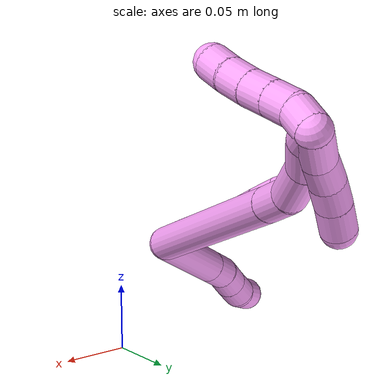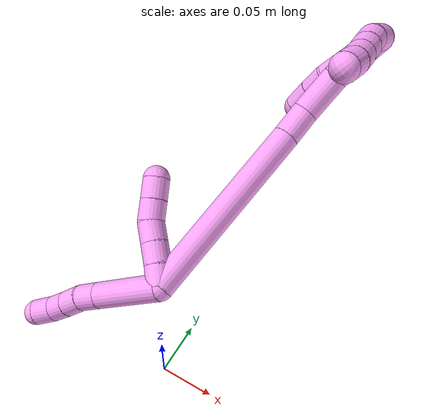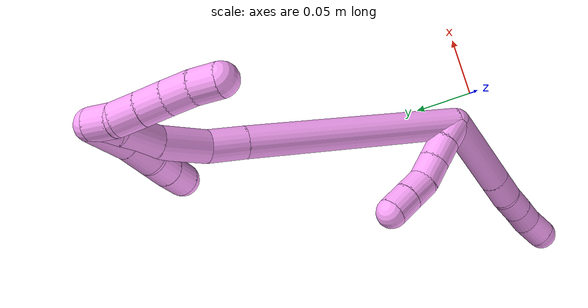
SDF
<sdf version="1.7">
 <world name="default">
  <model name="4">
   <static>0</static>
   <link name="4">
    <collision name="collision-cylinder-e_1_2_8">
     <pose>-0.013005 0.003216 -0.03126 -3.03909 -0.392388 2.63643</pose>
     <geometry><cylinder><radius>0.0125</radius><length>0.06802</length></cylinder></geometry>
     <surface>
      <friction><ode><mu>1.16</mu><mu2>1.16</mu2><slip1>0</slip1><slip2>0</slip2></ode></friction>
      <contact><ode><kp>1e+06</kp><kd>1</kd><max_vel>0</max_vel><min_depth>0.001</min_depth></ode></contact>
     </surface>
    </collision>
    <visual name="visual-cylinder-e_1_2_8">
     <pose>-0.013005 0.003216 -0.03126 -3.03909 -0.392388 2.63643</pose>
     <geometry><cylinder><radius>0.0125</radius><length>0.06802</length></cylinder></geometry>
     <material><ambient>1 0.65098 0.996078 1</ambient></material>
    </visual>
    <collision name="collision-cylinder-e_2_8_9">
     <pose>-0.030126 0.007449 -0.072432 -3.03927 -0.391738 2.63644</pose>
     <geometry><cylinder><radius>0.0125</radius><length>0.021561</length></cylinder></geometry>
     <surface>
      <friction><ode><mu>1.16</mu><mu2>1.16</mu2><slip1>0</slip1><slip2>0</slip2></ode></friction>
      <contact><ode><kp>1e+06</kp><kd>1</kd><max_vel>0</max_vel><min_depth>0.001</min_depth></ode></contact>
     </surface>
    </collision>
    <visual name="visual-cylinder-e_2_8_9">
     <pose>-0.030126 0.007449 -0.072432 -3.03927 -0.391738 2.63644</pose>
     <geometry><cylinder><radius>0.0125</radius><length>0.021561</length></cylinder></geometry>
     <material><ambient>1 0.65098 0.996078 1</ambient></material>
    </visual>
    <collision name="collision-cylinder-e_3_9_10">
     <pose>-0.036452 0.008195 -0.09215 3.11388 -0.22151 -2.89367</pose>
     <geometry><cylinder><radius>0.0125</radius><length>0.020111</length></cylinder></geometry>
     <surface>
      <friction><ode><mu>1.16</mu><mu2>1.16</mu2><slip1>0</slip1><slip2>0</slip2></ode></friction>
      <contact><ode><kp>1e+06</kp><kd>1</kd><max_vel>0</max_vel><min_depth>0.001</min_depth></ode></contact>
     </surface>
    </collision>
    <visual name="visual-cylinder-e_3_9_10">
     <pose>-0.036452 0.008195 -0.09215 3.11388 -0.22151 -2.89367</pose>
     <geometry><cylinder><radius>0.0125</radius><length>0.020111</length></cylinder></geometry>
     <material><ambient>1 0.65098 0.996078 1</ambient></material>
    </visual>
    <collision name="collision-cylinder-e_4_10_11">
     <pose>-0.040963 0.008021 -0.111756 -3.1316 -0.230685 3.05539</pose>
     <geometry><cylinder><radius>0.0125</radius><length>0.020134</length></cylinder></geometry>
     <surface>
      <friction><ode><mu>1.16</mu><mu2>1.16</mu2><slip1>0</slip1><slip2>0</slip2></ode></friction>
      <contact><ode><kp>1e+06</kp><kd>1</kd><max_vel>0</max_vel><min_depth>0.001</min_depth></ode></contact>
     </surface>
    </collision>
    <visual name="visual-cylinder-e_4_10_11">
     <pose>-0.040963 0.008021 -0.111756 -3.1316 -0.230685 3.05539</pose>
     <geometry><cylinder><radius>0.0125</radius><length>0.020134</length></cylinder></geometry>
     <material><ambient>1 0.65098 0.996078 1</ambient></material>
    </visual>
    <collision name="collision-cylinder-e_5_11_6">
     <pose>-0.048455 0.007258 -0.130161 3.04193 -0.540581 -2.78542</pose>
     <geometry><cylinder><radius>0.0125</radius><length>0.020174</length></cylinder></geometry>
     <surface>
      <friction><ode><mu>1.16</mu><mu2>1.16</mu2><slip1>0</slip1><slip2>0</slip2></ode></friction>
      <contact><ode><kp>1e+06</kp><kd>1</kd><max_vel>0</max_vel><min_depth>0.001</min_depth></ode></contact>
     </surface>
    </collision>
    <visual name="visual-cylinder-e_5_11_6">
     <pose>-0.048455 0.007258 -0.130161 3.04193 -0.540581 -2.78542</pose>
     <geometry><cylinder><radius>0.0125</radius><length>0.020174</length></cylinder></geometry>
     <material><ambient>1 0.65098 0.996078 1</ambient></material>
    </visual>
    <collision name="collision-cylinder-e_1_2_12">
     <pose>-0.00378 0.009015 0.002109 -1.34094 -0.387611 0.308812</pose>
     <geometry><cylinder><radius>0.0125</radius><length>0.02</length></cylinder></geometry>
     <surface>
      <friction><ode><mu>1.16</mu><mu2>1.16</mu2><slip1>0</slip1><slip2>0</slip2></ode></friction>
      <contact><ode><kp>1e+06</kp><kd>1</kd><max_vel>0</max_vel><min_depth>0.001</min_depth></ode></contact>
     </surface>
    </collision>
    <visual name="visual-cylinder-e_1_2_12">
     <pose>-0.00378 0.009015 0.002109 -1.34094 -0.387611 0.308812</pose>
     <geometry><cylinder><radius>0.0125</radius><length>0.02</length></cylinder></geometry>
     <material><ambient>1 0.65098 0.996078 1</ambient></material>
    </visual>
    <collision name="collision-cylinder-e_2_12_13">
     <pose>-0.011722 0.027018 0.00559 -1.41938 -0.429345 0.370287</pose>
     <geometry><cylinder><radius>0.0125</radius><length>0.02</length></cylinder></geometry>
     <surface>
      <friction><ode><mu>1.16</mu><mu2>1.16</mu2><slip1>0</slip1><slip2>0</slip2></ode></friction>
      <contact><ode><kp>1e+06</kp><kd>1</kd><max_vel>0</max_vel><min_depth>0.001</min_depth></ode></contact>
     </surface>
    </collision>
    <visual name="visual-cylinder-e_2_12_13">
     <pose>-0.011722 0.027018 0.00559 -1.41938 -0.429345 0.370287</pose>
     <geometry><cylinder><radius>0.0125</radius><length>0.02</length></cylinder></geometry>
     <material><ambient>1 0.65098 0.996078 1</ambient></material>
    </visual>
    <collision name="collision-cylinder-e_3_13_14">
     <pose>-0.02003 0.045001 0.008342 -1.41847 -0.427374 0.368241</pose>
     <geometry><cylinder><radius>0.0125</radius><length>0.02</length></cylinder></geometry>
     <surface>
      <friction><ode><mu>1.16</mu><mu2>1.16</mu2><slip1>0</slip1><slip2>0</slip2></ode></friction>
      <contact><ode><kp>1e+06</kp><kd>1</kd><max_vel>0</max_vel><min_depth>0.001</min_depth></ode></contact>
     </surface>
    </collision>
    <visual name="visual-cylinder-e_3_13_14">
     <pose>-0.02003 0.045001 0.008342 -1.41847 -0.427374 0.368241</pose>
     <geometry><cylinder><radius>0.0125</radius><length>0.02</length></cylinder></geometry>
     <material><ambient>1 0.65098 0.996078 1</ambient></material>
    </visual>
    <collision name="collision-cylinder-e_4_14_15">
     <pose>-0.02676 0.062673 0.01397 -1.1156 -0.261459 0.163691</pose>
     <geometry><cylinder><radius>0.0125</radius><length>0.02</length></cylinder></geometry>
     <surface>
      <friction><ode><mu>1.16</mu><mu2>1.16</mu2><slip1>0</slip1><slip2>0</slip2></ode></friction>
      <contact><ode><kp>1e+06</kp><kd>1</kd><max_vel>0</max_vel><min_depth>0.001</min_depth></ode></contact>
     </surface>
    </collision>
    <visual name="visual-cylinder-e_4_14_15">
     <pose>-0.02676 0.062673 0.01397 -1.1156 -0.261459 0.163691</pose>
     <geometry><cylinder><radius>0.0125</radius><length>0.02</length></cylinder></geometry>
     <material><ambient>1 0.65098 0.996078 1</ambient></material>
    </visual>
    <collision name="collision-cylinder-e_5_15_5">
     <pose>-0.031905 0.080138 0.022242 -1.14134 -0.258936 0.166762</pose>
     <geometry><cylinder><radius>0.0125</radius><length>0.02</length></cylinder></geometry>
     <surface>
      <friction><ode><mu>1.16</mu><mu2>1.16</mu2><slip1>0</slip1><slip2>0</slip2></ode></friction>
      <contact><ode><kp>1e+06</kp><kd>1</kd><max_vel>0</max_vel><min_depth>0.001</min_depth></ode></contact>
     </surface>
    </collision>
    <visual name="visual-cylinder-e_5_15_5">
     <pose>-0.031905 0.080138 0.022242 -1.14134 -0.258936 0.166762</pose>
     <geometry><cylinder><radius>0.0125</radius><length>0.02</length></cylinder></geometry>
     <material><ambient>1 0.65098 0.996078 1</ambient></material>
    </visual>
    <collision name="collision-cylinder-e_1_2_16">
     <pose>0.021549 0.064551 0.057631 -0.841974 0.244056 -0.109713</pose>
     <geometry><cylinder><radius>0.0125</radius><length>0.178354</length></cylinder></geometry>
     <surface>
      <friction><ode><mu>1.16</mu><mu2>1.16</mu2><slip1>0</slip1><slip2>0</slip2></ode></friction>
      <contact><ode><kp>1e+06</kp><kd>1</kd><max_vel>0</max_vel><min_depth>0.001</min_depth></ode></contact>
     </surface>
    </collision>
    <visual name="visual-cylinder-e_1_2_16">
     <pose>0.021549 0.064551 0.057631 -0.841974 0.244056 -0.109713</pose>
     <geometry><cylinder><radius>0.0125</radius><length>0.178354</length></cylinder></geometry>
     <material><ambient>1 0.65098 0.996078 1</ambient></material>
    </visual>
    <collision name="collision-cylinder-e_2_16_17">
     <pose>0.046265 0.139945 0.124981 -0.840024 0.214185 -0.095946</pose>
     <geometry><cylinder><radius>0.0125</radius><length>0.029802</length></cylinder></geometry>
     <surface>
      <friction><ode><mu>1.16</mu><mu2>1.16</mu2><slip1>0</slip1><slip2>0</slip2></ode></friction>
      <contact><ode><kp>1e+06</kp><kd>1</kd><max_vel>0</max_vel><min_depth>0.001</min_depth></ode></contact>
     </surface>
    </collision>
    <visual name="visual-cylinder-e_2_16_17">
     <pose>0.046265 0.139945 0.124981 -0.840024 0.214185 -0.095946</pose>
     <geometry><cylinder><radius>0.0125</radius><length>0.029802</length></cylinder></geometry>
     <material><ambient>1 0.65098 0.996078 1</ambient></material>
    </visual>
    <collision name="collision-cylinder-e_3_17_18">
     <pose>0.051427 0.161375 0.152039 -0.548162 0.097879 -0.02754</pose>
     <geometry><cylinder><radius>0.0125</radius><length>0.04083</length></cylinder></geometry>
     <surface>
      <friction><ode><mu>1.16</mu><mu2>1.16</mu2><slip1>0</slip1><slip2>0</slip2></ode></friction>
      <contact><ode><kp>1e+06</kp><kd>1</kd><max_vel>0</max_vel><min_depth>0.001</min_depth></ode></contact>
     </surface>
    </collision>
    <visual name="visual-cylinder-e_3_17_18">
     <pose>0.051427 0.161375 0.152039 -0.548162 0.097879 -0.02754</pose>
     <geometry><cylinder><radius>0.0125</radius><length>0.04083</length></cylinder></geometry>
     <material><ambient>1 0.65098 0.996078 1</ambient></material>
    </visual>
    <collision name="collision-cylinder-e_4_18_19">
     <pose>0.054874 0.176591 0.184 -0.306574 0.094425 -0.014599</pose>
     <geometry><cylinder><radius>0.0125</radius><length>0.030809</length></cylinder></geometry>
     <surface>
      <friction><ode><mu>1.16</mu><mu2>1.16</mu2><slip1>0</slip1><slip2>0</slip2></ode></friction>
      <contact><ode><kp>1e+06</kp><kd>1</kd><max_vel>0</max_vel><min_depth>0.001</min_depth></ode></contact>
     </surface>
    </collision>
    <visual name="visual-cylinder-e_4_18_19">
     <pose>0.054874 0.176591 0.184 -0.306574 0.094425 -0.014599</pose>
     <geometry><cylinder><radius>0.0125</radius><length>0.030809</length></cylinder></geometry>
     <material><ambient>1 0.65098 0.996078 1</ambient></material>
    </visual>
    <collision name="collision-cylinder-e_5_19_1">
     <pose>0.059342 0.186324 0.206801 -0.557936 0.303061 -0.087423</pose>
     <geometry><cylinder><radius>0.0125</radius><length>0.020205</length></cylinder></geometry>
     <surface>
      <friction><ode><mu>1.16</mu><mu2>1.16</mu2><slip1>0</slip1><slip2>0</slip2></ode></friction>
      <contact><ode><kp>1e+06</kp><kd>1</kd><max_vel>0</max_vel><min_depth>0.001</min_depth></ode></contact>
     </surface>
    </collision>
    <visual name="visual-cylinder-e_5_19_1">
     <pose>0.059342 0.186324 0.206801 -0.557936 0.303061 -0.087423</pose>
     <geometry><cylinder><radius>0.0125</radius><length>0.020205</length></cylinder></geometry>
     <material><ambient>1 0.65098 0.996078 1</ambient></material>
    </visual>
    <collision name="collision-cylinder-e_1_1_20">
     <pose>0.05987 0.188239 0.199456 2.93891 -0.155624 -1.30824</pose>
     <geometry><cylinder><radius>0.0125</radius><length>0.032086</length></cylinder></geometry>
     <surface>
      <friction><ode><mu>1.16</mu><mu2>1.16</mu2><slip1>0</slip1><slip2>0</slip2></ode></friction>
      <contact><ode><kp>1e+06</kp><kd>1</kd><max_vel>0</max_vel><min_depth>0.001</min_depth></ode></contact>
     </surface>
    </collision>
    <visual name="visual-cylinder-e_1_1_20">
     <pose>0.05987 0.188239 0.199456 2.93891 -0.155624 -1.30824</pose>
     <geometry><cylinder><radius>0.0125</radius><length>0.032086</length></cylinder></geometry>
     <material><ambient>1 0.65098 0.996078 1</ambient></material>
    </visual>
    <collision name="collision-cylinder-e_2_20_21">
     <pose>0.056178 0.184381 0.171527 3.08789 -0.096785 -2.12897</pose>
     <geometry><cylinder><radius>0.0125</radius><length>0.024961</length></cylinder></geometry>
     <surface>
      <friction><ode><mu>1.16</mu><mu2>1.16</mu2><slip1>0</slip1><slip2>0</slip2></ode></friction>
      <contact><ode><kp>1e+06</kp><kd>1</kd><max_vel>0</max_vel><min_depth>0.001</min_depth></ode></contact>
     </surface>
    </collision>
    <visual name="visual-cylinder-e_2_20_21">
     <pose>0.056178 0.184381 0.171527 3.08789 -0.096785 -2.12897</pose>
     <geometry><cylinder><radius>0.0125</radius><length>0.024961</length></cylinder></geometry>
     <material><ambient>1 0.65098 0.996078 1</ambient></material>
    </visual>
    <collision name="collision-cylinder-e_3_21_22">
     <pose>0.05598 0.183592 0.148987 3.1295 0.099107 2.89887</pose>
     <geometry><cylinder><radius>0.0125</radius><length>0.020374</length></cylinder></geometry>
     <surface>
      <friction><ode><mu>1.16</mu><mu2>1.16</mu2><slip1>0</slip1><slip2>0</slip2></ode></friction>
      <contact><ode><kp>1e+06</kp><kd>1</kd><max_vel>0</max_vel><min_depth>0.001</min_depth></ode></contact>
     </surface>
    </collision>
    <visual name="visual-cylinder-e_3_21_22">
     <pose>0.05598 0.183592 0.148987 3.1295 0.099107 2.89887</pose>
     <geometry><cylinder><radius>0.0125</radius><length>0.020374</length></cylinder></geometry>
     <material><ambient>1 0.65098 0.996078 1</ambient></material>
    </visual>
    <collision name="collision-cylinder-e_4_22_4">
     <pose>0.058513 0.182848 0.127682 3.08603 0.135498 2.36417</pose>
     <geometry><cylinder><radius>0.0125</radius><length>0.022578</length></cylinder></geometry>
     <surface>
      <friction><ode><mu>1.16</mu><mu2>1.16</mu2><slip1>0</slip1><slip2>0</slip2></ode></friction>
      <contact><ode><kp>1e+06</kp><kd>1</kd><max_vel>0</max_vel><min_depth>0.001</min_depth></ode></contact>
     </surface>
    </collision>
    <visual name="visual-cylinder-e_4_22_4">
     <pose>0.058513 0.182848 0.127682 3.08603 0.135498 2.36417</pose>
     <geometry><cylinder><radius>0.0125</radius><length>0.022578</length></cylinder></geometry>
     <material><ambient>1 0.65098 0.996078 1</ambient></material>
    </visual>
    <collision name="collision-cylinder-e_1_1_23">
     <pose>0.055332 0.184323 0.215355 1.51825 -0.778973 -0.742731</pose>
     <geometry><cylinder><radius>0.0125</radius><length>0.02</length></cylinder></geometry>
     <surface>
      <friction><ode><mu>1.16</mu><mu2>1.16</mu2><slip1>0</slip1><slip2>0</slip2></ode></friction>
      <contact><ode><kp>1e+06</kp><kd>1</kd><max_vel>0</max_vel><min_depth>0.001</min_depth></ode></contact>
     </surface>
    </collision>
    <visual name="visual-cylinder-e_1_1_23">
     <pose>0.055332 0.184323 0.215355 1.51825 -0.778973 -0.742731</pose>
     <geometry><cylinder><radius>0.0125</radius><length>0.02</length></cylinder></geometry>
     <material><ambient>1 0.65098 0.996078 1</ambient></material>
    </visual>
    <collision name="collision-cylinder-e_2_23_24">
     <pose>0.043701 0.168361 0.215111 1.64047 -0.478578 -0.511696</pose>
     <geometry><cylinder><radius>0.0125</radius><length>0.02</length></cylinder></geometry>
     <surface>
      <friction><ode><mu>1.16</mu><mu2>1.16</mu2><slip1>0</slip1><slip2>0</slip2></ode></friction>
      <contact><ode><kp>1e+06</kp><kd>1</kd><max_vel>0</max_vel><min_depth>0.001</min_depth></ode></contact>
     </surface>
    </collision>
    <visual name="visual-cylinder-e_2_23_24">
     <pose>0.043701 0.168361 0.215111 1.64047 -0.478578 -0.511696</pose>
     <geometry><cylinder><radius>0.0125</radius><length>0.02</length></cylinder></geometry>
     <material><ambient>1 0.65098 0.996078 1</ambient></material>
    </visual>
    <collision name="collision-cylinder-e_3_24_25">
     <pose>0.034616 0.150588 0.213855 1.64217 -0.464501 -0.497542</pose>
     <geometry><cylinder><radius>0.0125</radius><length>0.02</length></cylinder></geometry>
     <surface>
      <friction><ode><mu>1.16</mu><mu2>1.16</mu2><slip1>0</slip1><slip2>0</slip2></ode></friction>
      <contact><ode><kp>1e+06</kp><kd>1</kd><max_vel>0</max_vel><min_depth>0.001</min_depth></ode></contact>
     </surface>
    </collision>
    <visual name="visual-cylinder-e_3_24_25">
     <pose>0.034616 0.150588 0.213855 1.64217 -0.464501 -0.497542</pose>
     <geometry><cylinder><radius>0.0125</radius><length>0.02</length></cylinder></geometry>
     <material><ambient>1 0.65098 0.996078 1</ambient></material>
    </visual>
    <collision name="collision-cylinder-e_4_25_26">
     <pose>0.02516 0.132999 0.213013 1.59437 -0.520883 -0.532738</pose>
     <geometry><cylinder><radius>0.0125</radius><length>0.02</length></cylinder></geometry>
     <surface>
      <friction><ode><mu>1.16</mu><mu2>1.16</mu2><slip1>0</slip1><slip2>0</slip2></ode></friction>
      <contact><ode><kp>1e+06</kp><kd>1</kd><max_vel>0</max_vel><min_depth>0.001</min_depth></ode></contact>
     </surface>
    </collision>
    <visual name="visual-cylinder-e_4_25_26">
     <pose>0.02516 0.132999 0.213013 1.59437 -0.520883 -0.532738</pose>
     <geometry><cylinder><radius>0.0125</radius><length>0.02</length></cylinder></geometry>
     <material><ambient>1 0.65098 0.996078 1</ambient></material>
    </visual>
    <collision name="collision-cylinder-e_5_26_3">
     <pose>0.014342 0.11624 0.212124 1.65524 -0.623752 -0.674845</pose>
     <geometry><cylinder><radius>0.0125</radius><length>0.02</length></cylinder></geometry>
     <surface>
      <friction><ode><mu>1.16</mu><mu2>1.16</mu2><slip1>0</slip1><slip2>0</slip2></ode></friction>
      <contact><ode><kp>1e+06</kp><kd>1</kd><max_vel>0</max_vel><min_depth>0.001</min_depth></ode></contact>
     </surface>
    </collision>
    <visual name="visual-cylinder-e_5_26_3">
     <pose>0.014342 0.11624 0.212124 1.65524 -0.623752 -0.674845</pose>
     <geometry><cylinder><radius>0.0125</radius><length>0.02</length></cylinder></geometry>
     <material><ambient>1 0.65098 0.996078 1</ambient></material>
    </visual>
    <collision name="collision-sphere-3">
     <pose>0.008502 0.108152 0.211439 0 -0 0</pose>
     <geometry><sphere><radius>0.0125</radius></sphere></geometry>
     <surface>
      <friction><ode><mu>1.16</mu><mu2>1.16</mu2><slip1>0</slip1><slip2>0</slip2></ode></friction>
      <contact><ode><kp>1e+06</kp><kd>1</kd><max_vel>0</max_vel><min_depth>0.001</min_depth></ode></contact>
     </surface>
    </collision>
    <visual name="visual-sphere-3">
     <pose>0.008502 0.108152 0.211439 0 -0 0</pose>
     <geometry><sphere><radius>0.0125</radius></sphere></geometry>
     <material><ambient>1 0.65098 0.996078 1</ambient></material>
    </visual>
    <collision name="collision-sphere-26">
     <pose>0.020183 0.124328 0.212809 0 -0 0</pose>
     <geometry><sphere><radius>0.0125</radius></sphere></geometry>
     <surface>
      <friction><ode><mu>1.16</mu><mu2>1.16</mu2><slip1>0</slip1><slip2>0</slip2></ode></friction>
      <contact><ode><kp>1e+06</kp><kd>1</kd><max_vel>0</max_vel><min_depth>0.001</min_depth></ode></contact>
     </surface>
    </collision>
    <visual name="visual-sphere-26">
     <pose>0.020183 0.124328 0.212809 0 -0 0</pose>
     <geometry><sphere><radius>0.0125</radius></sphere></geometry>
     <material><ambient>1 0.65098 0.996078 1</ambient></material>
    </visual>
    <collision name="collision-sphere-25">
     <pose>0.030136 0.141671 0.213218 0 -0 0</pose>
     <geometry><sphere><radius>0.0125</radius></sphere></geometry>
     <surface>
      <friction><ode><mu>1.16</mu><mu2>1.16</mu2><slip1>0</slip1><slip2>0</slip2></ode></friction>
      <contact><ode><kp>1e+06</kp><kd>1</kd><max_vel>0</max_vel><min_depth>0.001</min_depth></ode></contact>
     </surface>
    </collision>
    <visual name="visual-sphere-25">
     <pose>0.030136 0.141671 0.213218 0 -0 0</pose>
     <geometry><sphere><radius>0.0125</radius></sphere></geometry>
     <material><ambient>1 0.65098 0.996078 1</ambient></material>
    </visual>
    <collision name="collision-sphere-24">
     <pose>0.039096 0.159506 0.214493 0 -0 0</pose>
     <geometry><sphere><radius>0.0125</radius></sphere></geometry>
     <surface>
      <friction><ode><mu>1.16</mu><mu2>1.16</mu2><slip1>0</slip1><slip2>0</slip2></ode></friction>
      <contact><ode><kp>1e+06</kp><kd>1</kd><max_vel>0</max_vel><min_depth>0.001</min_depth></ode></contact>
     </surface>
    </collision>
    <visual name="visual-sphere-24">
     <pose>0.039096 0.159506 0.214493 0 -0 0</pose>
     <geometry><sphere><radius>0.0125</radius></sphere></geometry>
     <material><ambient>1 0.65098 0.996078 1</ambient></material>
    </visual>
    <collision name="collision-sphere-23">
     <pose>0.048306 0.177216 0.215729 0 -0 0</pose>
     <geometry><sphere><radius>0.0125</radius></sphere></geometry>
     <surface>
      <friction><ode><mu>1.16</mu><mu2>1.16</mu2><slip1>0</slip1><slip2>0</slip2></ode></friction>
      <contact><ode><kp>1e+06</kp><kd>1</kd><max_vel>0</max_vel><min_depth>0.001</min_depth></ode></contact>
     </surface>
    </collision>
    <visual name="visual-sphere-23">
     <pose>0.048306 0.177216 0.215729 0 -0 0</pose>
     <geometry><sphere><radius>0.0125</radius></sphere></geometry>
     <material><ambient>1 0.65098 0.996078 1</ambient></material>
    </visual>
    <collision name="collision-sphere-4">
     <pose>0.060038 0.182227 0.116513 0 -0 0</pose>
     <geometry><sphere><radius>0.0125</radius></sphere></geometry>
     <surface>
      <friction><ode><mu>1.16</mu><mu2>1.16</mu2><slip1>0</slip1><slip2>0</slip2></ode></friction>
      <contact><ode><kp>1e+06</kp><kd>1</kd><max_vel>0</max_vel><min_depth>0.001</min_depth></ode></contact>
     </surface>
    </collision>
    <visual name="visual-sphere-4">
     <pose>0.060038 0.182227 0.116513 0 -0 0</pose>
     <geometry><sphere><radius>0.0125</radius></sphere></geometry>
     <material><ambient>1 0.65098 0.996078 1</ambient></material>
    </visual>
    <collision name="collision-sphere-22">
     <pose>0.056988 0.183469 0.13885 0 -0 0</pose>
     <geometry><sphere><radius>0.0125</radius></sphere></geometry>
     <surface>
      <friction><ode><mu>1.16</mu><mu2>1.16</mu2><slip1>0</slip1><slip2>0</slip2></ode></friction>
      <contact><ode><kp>1e+06</kp><kd>1</kd><max_vel>0</max_vel><min_depth>0.001</min_depth></ode></contact>
     </surface>
    </collision>
    <visual name="visual-sphere-22">
     <pose>0.056988 0.183469 0.13885 0 -0 0</pose>
     <geometry><sphere><radius>0.0125</radius></sphere></geometry>
     <material><ambient>1 0.65098 0.996078 1</ambient></material>
    </visual>
    <collision name="collision-sphere-21">
     <pose>0.054972 0.183715 0.159123 0 -0 0</pose>
     <geometry><sphere><radius>0.0125</radius></sphere></geometry>
     <surface>
      <friction><ode><mu>1.16</mu><mu2>1.16</mu2><slip1>0</slip1><slip2>0</slip2></ode></friction>
      <contact><ode><kp>1e+06</kp><kd>1</kd><max_vel>0</max_vel><min_depth>0.001</min_depth></ode></contact>
     </surface>
    </collision>
    <visual name="visual-sphere-21">
     <pose>0.054972 0.183715 0.159123 0 -0 0</pose>
     <geometry><sphere><radius>0.0125</radius></sphere></geometry>
     <material><ambient>1 0.65098 0.996078 1</ambient></material>
    </visual>
    <collision name="collision-sphere-20">
     <pose>0.057384 0.185048 0.183932 0 -0 0</pose>
     <geometry><sphere><radius>0.0125</radius></sphere></geometry>
     <surface>
      <friction><ode><mu>1.16</mu><mu2>1.16</mu2><slip1>0</slip1><slip2>0</slip2></ode></friction>
      <contact><ode><kp>1e+06</kp><kd>1</kd><max_vel>0</max_vel><min_depth>0.001</min_depth></ode></contact>
     </surface>
    </collision>
    <visual name="visual-sphere-20">
     <pose>0.057384 0.185048 0.183932 0 -0 0</pose>
     <geometry><sphere><radius>0.0125</radius></sphere></geometry>
     <material><ambient>1 0.65098 0.996078 1</ambient></material>
    </visual>
    <collision name="collision-sphere-6">
     <pose>-0.053647 0.006398 -0.138767 0 -0 0</pose>
     <geometry><sphere><radius>0.0125</radius></sphere></geometry>
     <surface>
      <friction><ode><mu>1.16</mu><mu2>1.16</mu2><slip1>0</slip1><slip2>0</slip2></ode></friction>
      <contact><ode><kp>1e+06</kp><kd>1</kd><max_vel>0</max_vel><min_depth>0.001</min_depth></ode></contact>
     </surface>
    </collision>
    <visual name="visual-sphere-6">
     <pose>-0.053647 0.006398 -0.138767 0 -0 0</pose>
     <geometry><sphere><radius>0.0125</radius></sphere></geometry>
     <material><ambient>1 0.65098 0.996078 1</ambient></material>
    </visual>
    <collision name="collision-sphere-11">
     <pose>-0.043264 0.008119 -0.121555 0 -0 0</pose>
     <geometry><sphere><radius>0.0125</radius></sphere></geometry>
     <surface>
      <friction><ode><mu>1.16</mu><mu2>1.16</mu2><slip1>0</slip1><slip2>0</slip2></ode></friction>
      <contact><ode><kp>1e+06</kp><kd>1</kd><max_vel>0</max_vel><min_depth>0.001</min_depth></ode></contact>
     </surface>
    </collision>
    <visual name="visual-sphere-11">
     <pose>-0.043264 0.008119 -0.121555 0 -0 0</pose>
     <geometry><sphere><radius>0.0125</radius></sphere></geometry>
     <material><ambient>1 0.65098 0.996078 1</ambient></material>
    </visual>
    <collision name="collision-sphere-10">
     <pose>-0.038661 0.007923 -0.101956 0 -0 0</pose>
     <geometry><sphere><radius>0.0125</radius></sphere></geometry>
     <surface>
      <friction><ode><mu>1.16</mu><mu2>1.16</mu2><slip1>0</slip1><slip2>0</slip2></ode></friction>
      <contact><ode><kp>1e+06</kp><kd>1</kd><max_vel>0</max_vel><min_depth>0.001</min_depth></ode></contact>
     </surface>
    </collision>
    <visual name="visual-sphere-10">
     <pose>-0.038661 0.007923 -0.101956 0 -0 0</pose>
     <geometry><sphere><radius>0.0125</radius></sphere></geometry>
     <material><ambient>1 0.65098 0.996078 1</ambient></material>
    </visual>
    <collision name="collision-sphere-9">
     <pose>-0.034242 0.008467 -0.082343 0 -0 0</pose>
     <geometry><sphere><radius>0.0125</radius></sphere></geometry>
     <surface>
      <friction><ode><mu>1.16</mu><mu2>1.16</mu2><slip1>0</slip1><slip2>0</slip2></ode></friction>
      <contact><ode><kp>1e+06</kp><kd>1</kd><max_vel>0</max_vel><min_depth>0.001</min_depth></ode></contact>
     </surface>
    </collision>
    <visual name="visual-sphere-9">
     <pose>-0.034242 0.008467 -0.082343 0 -0 0</pose>
     <geometry><sphere><radius>0.0125</radius></sphere></geometry>
     <material><ambient>1 0.65098 0.996078 1</ambient></material>
    </visual>
    <collision name="collision-sphere-2">
     <geometry><sphere><radius>0.0125</radius></sphere></geometry>
     <surface>
      <friction><ode><mu>1.16</mu><mu2>1.16</mu2><slip1>0</slip1><slip2>0</slip2></ode></friction>
      <contact><ode><kp>1e+06</kp><kd>1</kd><max_vel>0</max_vel><min_depth>0.001</min_depth></ode></contact>
     </surface>
    </collision>
    <visual name="visual-sphere-2">
     <geometry><sphere><radius>0.0125</radius></sphere></geometry>
     <material><ambient>1 0.65098 0.996078 1</ambient></material>
    </visual>
    <collision name="collision-sphere-19">
     <pose>0.056327 0.181219 0.198621 0 -0 0</pose>
     <geometry><sphere><radius>0.0125</radius></sphere></geometry>
     <surface>
      <friction><ode><mu>1.16</mu><mu2>1.16</mu2><slip1>0</slip1><slip2>0</slip2></ode></friction>
      <contact><ode><kp>1e+06</kp><kd>1</kd><max_vel>0</max_vel><min_depth>0.001</min_depth></ode></contact>
     </surface>
    </collision>
    <visual name="visual-sphere-19">
     <pose>0.056327 0.181219 0.198621 0 -0 0</pose>
     <geometry><sphere><radius>0.0125</radius></sphere></geometry>
     <material><ambient>1 0.65098 0.996078 1</ambient></material>
    </visual>
    <collision name="collision-sphere-8">
     <pose>-0.02601 0.006431 -0.06252 0 -0 0</pose>
     <geometry><sphere><radius>0.0125</radius></sphere></geometry>
     <surface>
      <friction><ode><mu>1.16</mu><mu2>1.16</mu2><slip1>0</slip1><slip2>0</slip2></ode></friction>
      <contact><ode><kp>1e+06</kp><kd>1</kd><max_vel>0</max_vel><min_depth>0.001</min_depth></ode></contact>
     </surface>
    </collision>
    <visual name="visual-sphere-8">
     <pose>-0.02601 0.006431 -0.06252 0 -0 0</pose>
     <geometry><sphere><radius>0.0125</radius></sphere></geometry>
     <material><ambient>1 0.65098 0.996078 1</ambient></material>
    </visual>
    <collision name="collision-sphere-12">
     <pose>-0.00756 0.018029 0.004219 0 -0 0</pose>
     <geometry><sphere><radius>0.0125</radius></sphere></geometry>
     <surface>
      <friction><ode><mu>1.16</mu><mu2>1.16</mu2><slip1>0</slip1><slip2>0</slip2></ode></friction>
      <contact><ode><kp>1e+06</kp><kd>1</kd><max_vel>0</max_vel><min_depth>0.001</min_depth></ode></contact>
     </surface>
    </collision>
    <visual name="visual-sphere-12">
     <pose>-0.00756 0.018029 0.004219 0 -0 0</pose>
     <geometry><sphere><radius>0.0125</radius></sphere></geometry>
     <material><ambient>1 0.65098 0.996078 1</ambient></material>
    </visual>
    <collision name="collision-sphere-13">
     <pose>-0.015885 0.036006 0.006962 0 -0 0</pose>
     <geometry><sphere><radius>0.0125</radius></sphere></geometry>
     <surface>
      <friction><ode><mu>1.16</mu><mu2>1.16</mu2><slip1>0</slip1><slip2>0</slip2></ode></friction>
      <contact><ode><kp>1e+06</kp><kd>1</kd><max_vel>0</max_vel><min_depth>0.001</min_depth></ode></contact>
     </surface>
    </collision>
    <visual name="visual-sphere-13">
     <pose>-0.015885 0.036006 0.006962 0 -0 0</pose>
     <geometry><sphere><radius>0.0125</radius></sphere></geometry>
     <material><ambient>1 0.65098 0.996078 1</ambient></material>
    </visual>
    <collision name="collision-sphere-14">
     <pose>-0.024175 0.053996 0.009723 0 -0 0</pose>
     <geometry><sphere><radius>0.0125</radius></sphere></geometry>
     <surface>
      <friction><ode><mu>1.16</mu><mu2>1.16</mu2><slip1>0</slip1><slip2>0</slip2></ode></friction>
      <contact><ode><kp>1e+06</kp><kd>1</kd><max_vel>0</max_vel><min_depth>0.001</min_depth></ode></contact>
     </surface>
    </collision>
    <visual name="visual-sphere-14">
     <pose>-0.024175 0.053996 0.009723 0 -0 0</pose>
     <geometry><sphere><radius>0.0125</radius></sphere></geometry>
     <material><ambient>1 0.65098 0.996078 1</ambient></material>
    </visual>
    <collision name="collision-sphere-15">
     <pose>-0.029345 0.071349 0.018217 0 -0 0</pose>
     <geometry><sphere><radius>0.0125</radius></sphere></geometry>
     <surface>
      <friction><ode><mu>1.16</mu><mu2>1.16</mu2><slip1>0</slip1><slip2>0</slip2></ode></friction>
      <contact><ode><kp>1e+06</kp><kd>1</kd><max_vel>0</max_vel><min_depth>0.001</min_depth></ode></contact>
     </surface>
    </collision>
    <visual name="visual-sphere-15">
     <pose>-0.029345 0.071349 0.018217 0 -0 0</pose>
     <geometry><sphere><radius>0.0125</radius></sphere></geometry>
     <material><ambient>1 0.65098 0.996078 1</ambient></material>
    </visual>
    <collision name="collision-sphere-5">
     <pose>-0.034466 0.088927 0.026267 0 -0 0</pose>
     <geometry><sphere><radius>0.0125</radius></sphere></geometry>
     <surface>
      <friction><ode><mu>1.16</mu><mu2>1.16</mu2><slip1>0</slip1><slip2>0</slip2></ode></friction>
      <contact><ode><kp>1e+06</kp><kd>1</kd><max_vel>0</max_vel><min_depth>0.001</min_depth></ode></contact>
     </surface>
    </collision>
    <visual name="visual-sphere-5">
     <pose>-0.034466 0.088927 0.026267 0 -0 0</pose>
     <geometry><sphere><radius>0.0125</radius></sphere></geometry>
     <material><ambient>1 0.65098 0.996078 1</ambient></material>
    </visual>
    <collision name="collision-sphere-16">
     <pose>0.043098 0.129102 0.115262 0 -0 0</pose>
     <geometry><sphere><radius>0.0125</radius></sphere></geometry>
     <surface>
      <friction><ode><mu>1.16</mu><mu2>1.16</mu2><slip1>0</slip1><slip2>0</slip2></ode></friction>
      <contact><ode><kp>1e+06</kp><kd>1</kd><max_vel>0</max_vel><min_depth>0.001</min_depth></ode></contact>
     </surface>
    </collision>
    <visual name="visual-sphere-16">
     <pose>0.043098 0.129102 0.115262 0 -0 0</pose>
     <geometry><sphere><radius>0.0125</radius></sphere></geometry>
     <material><ambient>1 0.65098 0.996078 1</ambient></material>
    </visual>
    <collision name="collision-sphere-17">
     <pose>0.049432 0.150787 0.134699 0 -0 0</pose>
     <geometry><sphere><radius>0.0125</radius></sphere></geometry>
     <surface>
      <friction><ode><mu>1.16</mu><mu2>1.16</mu2><slip1>0</slip1><slip2>0</slip2></ode></friction>
      <contact><ode><kp>1e+06</kp><kd>1</kd><max_vel>0</max_vel><min_depth>0.001</min_depth></ode></contact>
     </surface>
    </collision>
    <visual name="visual-sphere-17">
     <pose>0.049432 0.150787 0.134699 0 -0 0</pose>
     <geometry><sphere><radius>0.0125</radius></sphere></geometry>
     <material><ambient>1 0.65098 0.996078 1</ambient></material>
    </visual>
    <collision name="collision-sphere-18">
     <pose>0.053422 0.171963 0.16938 0 -0 0</pose>
     <geometry><sphere><radius>0.0125</radius></sphere></geometry>
     <surface>
      <friction><ode><mu>1.16</mu><mu2>1.16</mu2><slip1>0</slip1><slip2>0</slip2></ode></friction>
      <contact><ode><kp>1e+06</kp><kd>1</kd><max_vel>0</max_vel><min_depth>0.001</min_depth></ode></contact>
     </surface>
    </collision>
    <visual name="visual-sphere-18">
     <pose>0.053422 0.171963 0.16938 0 -0 0</pose>
     <geometry><sphere><radius>0.0125</radius></sphere></geometry>
     <material><ambient>1 0.65098 0.996078 1</ambient></material>
    </visual>
    <collision name="collision-sphere-1">
     <pose>0.062357 0.191429 0.214981 0 -0 0</pose>
     <geometry><sphere><radius>0.0125</radius></sphere></geometry>
     <surface>
      <friction><ode><mu>1.16</mu><mu2>1.16</mu2><slip1>0</slip1><slip2>0</slip2></ode></friction>
      <contact><ode><kp>1e+06</kp><kd>1</kd><max_vel>0</max_vel><min_depth>0.001</min_depth></ode></contact>
     </surface>
    </collision>
    <visual name="visual-sphere-1">
     <pose>0.062357 0.191429 0.214981 0 -0 0</pose>
     <geometry><sphere><radius>0.0125</radius></sphere></geometry>
     <material><ambient>1 0.65098 0.996078 1</ambient></material>
    </visual>
    <inertial>
     <pose>0.018008 0.093824 0.078234 0 -0 0</pose>
     <mass>0.75</mass>
     <inertia>
      <ixx>0.000408</ixx>
      <ixy>0</ixy>
      <ixz>0</ixz>
      <iyy>0.00035</iyy>
      <iyz>0</iyz>
      <izz>-0.000456</izz>
     </inertia>
    </inertial>
   </link>
   <pose>-0.019723 0.030564 0.086437 0.054632 0.670432 0.49874</pose>
  </model>
 </world>
</sdf>
